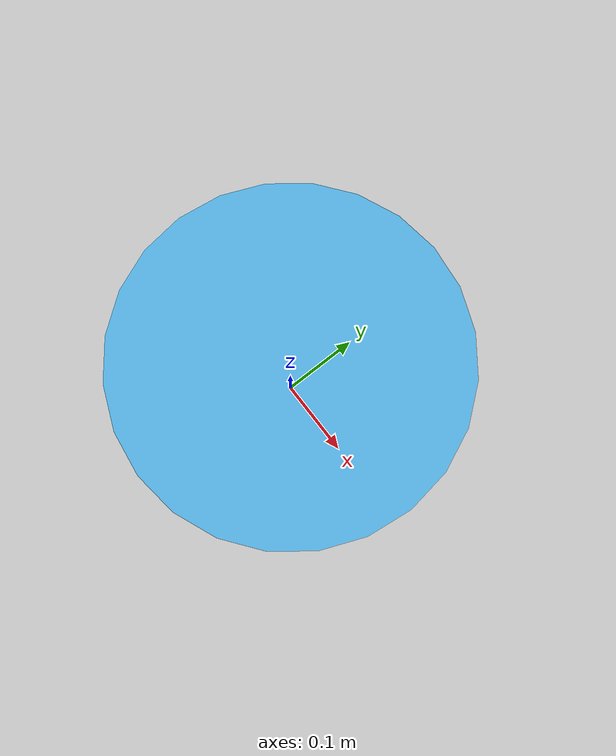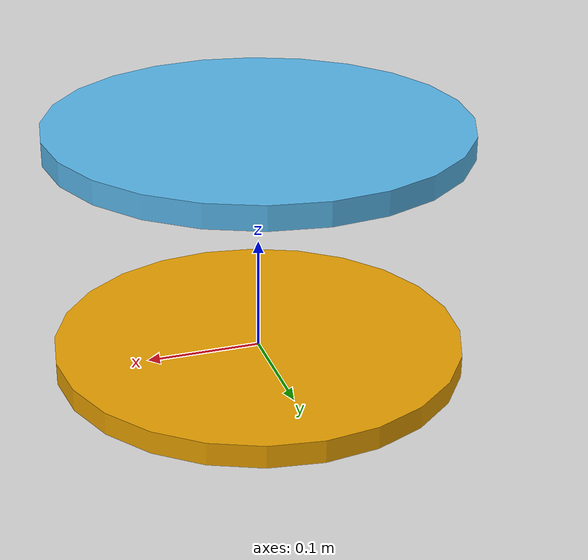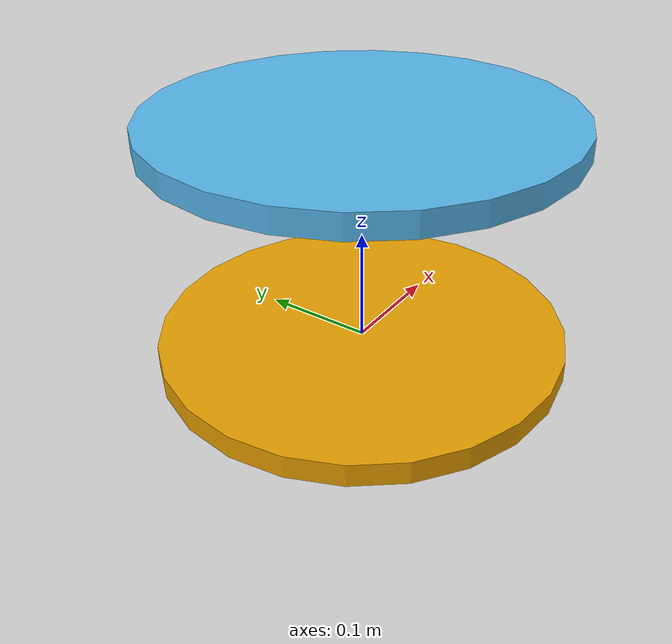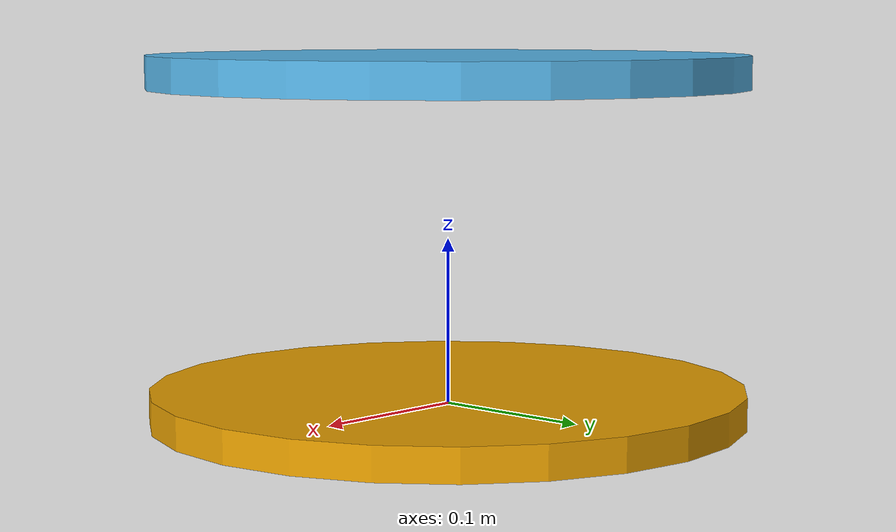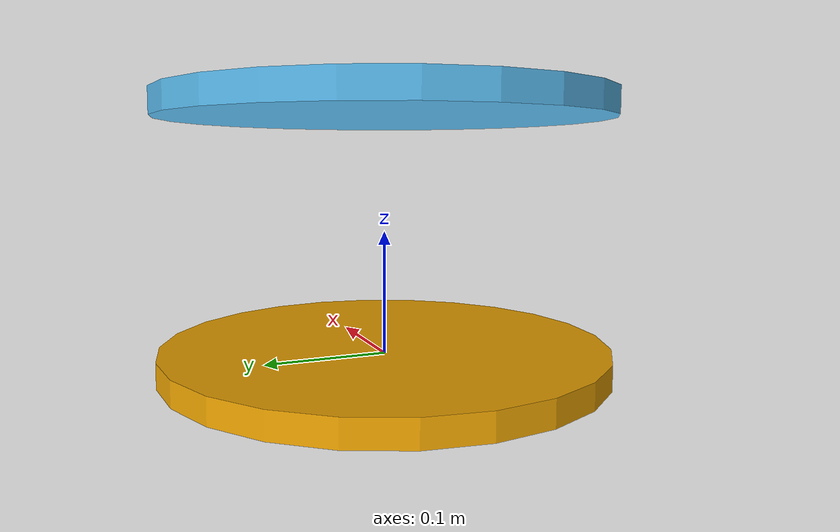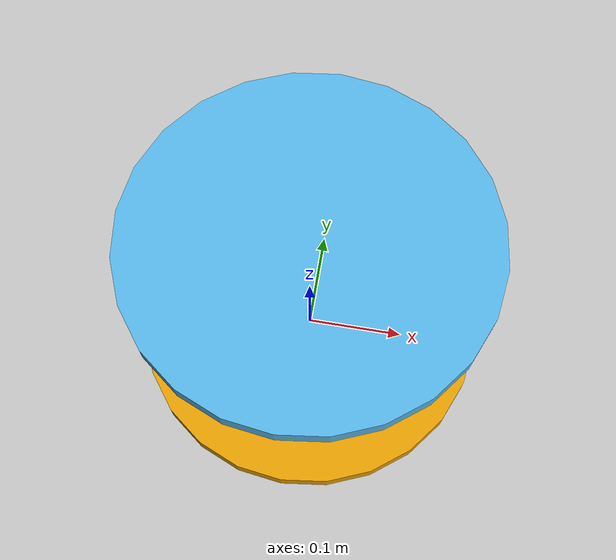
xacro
<?xml version="1.0"?>
<robot xmlns:xacro="http://ros.org/wiki/xacro"
       name="stewart_robot" >

   <!-- stewart -->
  <xacro:include filename="$(find imu_state_estimation)/models/stewart/stewart.urdf" />

   <link name="world" />

   <joint name="base_joint" type="fixed">
     <parent link="world" />
     <child link = "stewart_base_link" />
     <origin xyz="0.0 0.0 0." rpy="0.0 0.0 0.0" />
   </joint>

</robot>

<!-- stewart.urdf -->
<robot name="stewart">
 <link name="stewart_base_link">
   <visual>
     <geometry>
       <cylinder length="0.02" radius="0.18"/>
     </geometry>
   </visual>
 </link>

<link name="stewart_platform_link">
   <visual>
     <geometry>
       <cylinder length="0.02" radius="0.18"/>
     </geometry>
   </visual>
 </link>

 <joint name="movable_platform_joint" type="floating">
   <parent link="stewart_base_link" />
   <child link = "stewart_platform_link" />
   <origin xyz="0.0 0.0 0.2" rpy="0.0 0.0 0.0" />
 </joint>
</robot>
